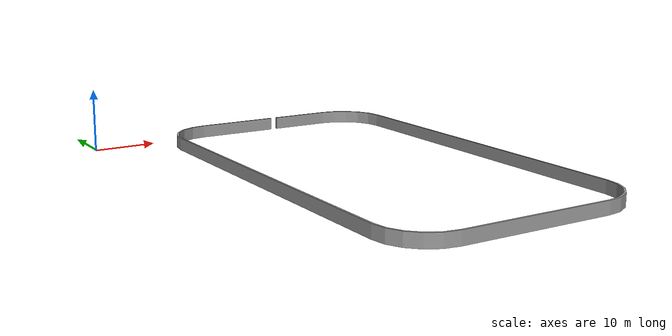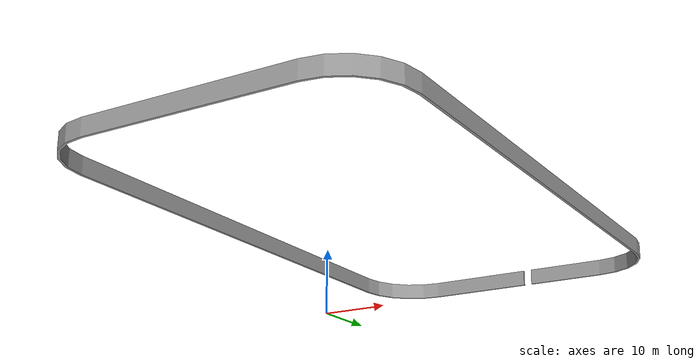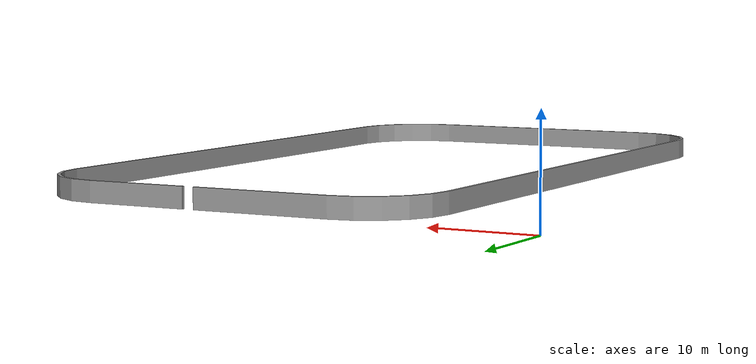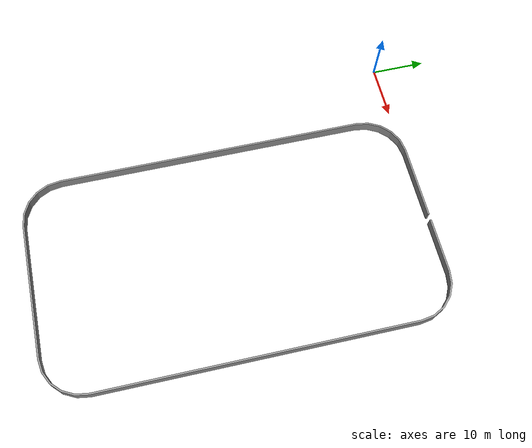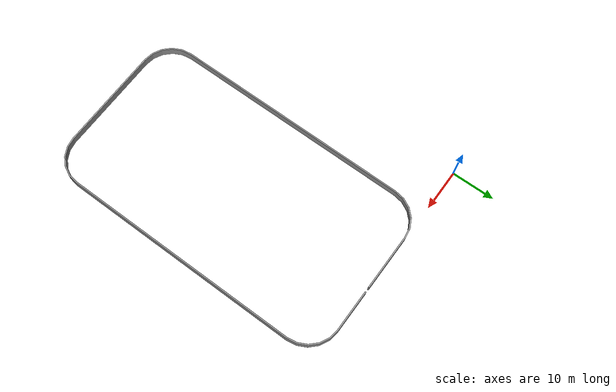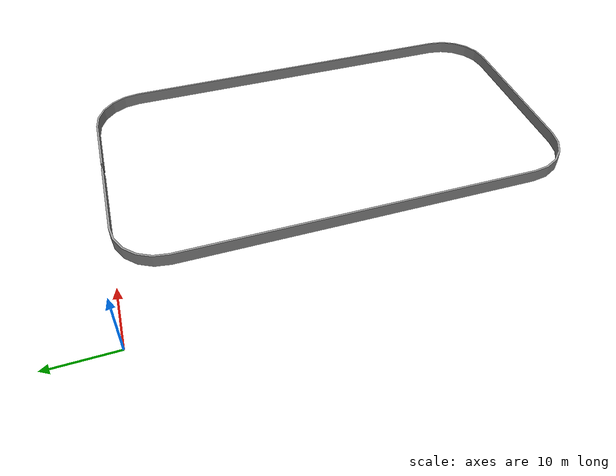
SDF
<?xml version='1.0' encoding='utf-8'?>
<sdf version="1.7">
  <model name="station_fence">
    <link name="link_0">
      <inertial>
        <mass>1</mass>
        <inertia>
          <ixx>0.166667</ixx>
          <ixy>0</ixy>
          <ixz>0</ixz>
          <iyy>0.166667</iyy>
          <iyz>0</iyz>
          <izz>0.166667</izz>
        </inertia>
        <pose>0 0 0 0 -0 0</pose>
      </inertial>
      <pose>-1e-06 -0 0 0 -0 0</pose>
      <gravity>1</gravity>
      <self_collide>0</self_collide>
      <kinematic>0</kinematic>
      <enable_wind>0</enable_wind>
      <visual name="visual">
        <pose>0 0 0 1.57079 -0 0</pose>
        <geometry>
          <mesh>
            <uri>meshes/station_fence.stl</uri>
            <scale>1 1 1</scale>
          </mesh>
        </geometry>
        <material>
          <lighting>1</lighting>
          <script>
            <uri>file://media/materials/scripts/gazebo.material</uri>
            <name>Gazebo/Grey</name>
          </script>
          <shader type="vertex">
            <normal_map>__default__</normal_map>
          </shader>
          <ambient>0.3 0.3 0.3 1</ambient>
          <diffuse>0.7 0.7 0.7 1</diffuse>
          <specular>0.01 0.01 0.01 1</specular>
          <emissive>0 0 0 1</emissive>
        </material>
        <transparency>0</transparency>
        <cast_shadows>1</cast_shadows>
      </visual>
      <collision name="collision">
        <laser_retro>0</laser_retro>
        <max_contacts>10</max_contacts>
        <pose>0 0 0 1.57079 -0 0</pose>
        <geometry>
          <mesh>
            <uri>meshes/station_fence.stl</uri>
            <scale>1 1 1</scale>
          </mesh>
        </geometry>
        </collision>
    </link>
    <static>1</static>
    <allow_auto_disable>1</allow_auto_disable>
  </model>
</sdf>
